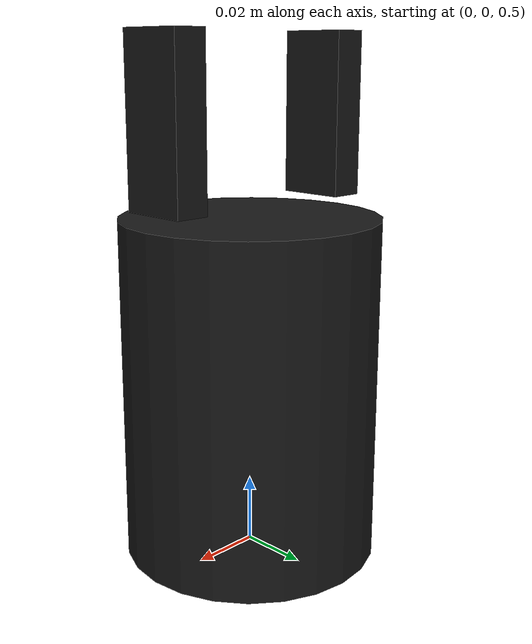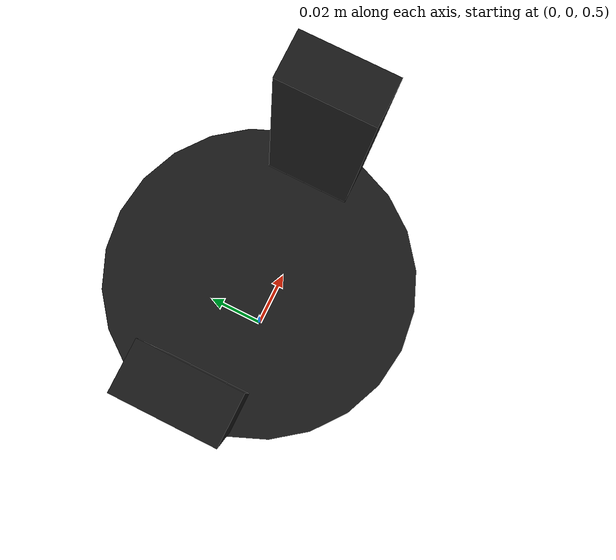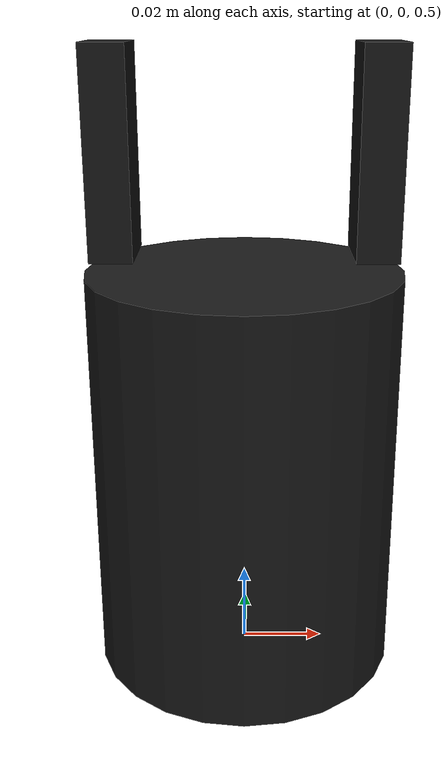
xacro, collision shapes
<?xml version="1.0"?>
<robot xmlns:xacro="http://ros.org/wiki/xacro" name="robotiq_hande" >
  <!-- robotiq_hande_gripper -->
  <xacro:include filename="$(find acroba_description)/urdf/robotiq_hande/robotiq_hande.urdf.xacro" />
  <xacro:robotiq_hande prefix=""/>

  <link name="world" />

  <joint name="world_to_robotiq_adapter" type="fixed">
    <origin rpy="0 0 0" xyz="0 0 0.5"/>
    <parent link="world"/>
    <child link="base_tool"/>
  </joint>

</robot>

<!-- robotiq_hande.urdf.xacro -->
<robot xmlns:xacro="http://ros.org/wiki/xacro">
  <xacro:macro name="robotiq_hande"  params="prefix">
    <link name="${prefix}base_tool">
      <inertial>
        <origin xyz="0 0 0.04607" rpy="0 0 0" />
        <mass value="0.86387" />
        <inertia ixx="1017560E-9" ixy="0" ixz="2235E-9" iyy="1028041E-9" iyz="0" izz="489810E-9" />
      </inertial>
      <visual>
        <origin xyz="0 0 0" rpy="0 0 0" />
        <geometry>
          <mesh filename="package://acroba_description/meshes/robotiq_hande/hand-e.dae" scale="0.001 0.001 0.001"/>
        </geometry>
        <material name="Gazebo/Black">
          <color rgba="0.1 0.1 0.1 1" />
        </material>
      </visual>
      <collision>
        <origin xyz="0 0 0.05" rpy="0 0 0" />
        <geometry>
          <cylinder radius="0.0375" length="0.1"/>
        </geometry>
      </collision>
    </link>
    <gazebo reference="${prefix}base_tool">
      <material>Gazebo/Black</material>
      <selfCollide>True</selfCollide>
    </gazebo>

    <link name="${prefix}left_finger">
      <inertial>
        <origin rpy="0 0 0" xyz="0.02262 -0.00759 0.00738"/>
        <mass value="0.03804"/>
        <inertia ixx="13567E-9" ixy="1849E-9" ixz="3622E-9" iyy="15784E-9" iyz="3616E-9" izz="7478E-9"/>
      </inertial>
      <visual>
        <origin rpy="0 0 0" xyz="0 0 0"/>
        <geometry>
          <mesh filename="package://acroba_description/meshes/robotiq_hande/finger_1.dae" scale="0.001 0.001 0.001"/>
        </geometry>
        <material name="Gazebo/Grey">
          <color rgba="0.1 0.1 0.1 1"/>
        </material>
      </visual>
      <collision>
        <origin xyz="0.03 0 0.0285" rpy="0 0 0"/>
        <geometry>
          <box size="0.01 0.02 0.047"/>
        </geometry>
      </collision>
    </link>
    <gazebo reference="${prefix}left_finger">
      <material>Gazebo/Grey</material>
      <selfCollide>True</selfCollide>
    </gazebo>

    <link name="${prefix}right_finger">
      <inertial>
        <origin rpy="0 0 0" xyz="-0.02262 0.00759 0.00738"/>
        <mass value="0.03804"/>
        <inertia ixx="13567E-9" ixy="1849E-9" ixz="-3622E-9" iyy="15784E-9" iyz="-3616E-9" izz="7478E-9"/>
      </inertial>
      <visual>
        <origin rpy="0 0 0" xyz="0 0 0"/>
        <geometry>
          <mesh filename="package://acroba_description/meshes/robotiq_hande/finger_2.dae" scale="0.001 0.001 0.001"/>
        </geometry>
        <material name="Gazebo/Grey">
          <color rgba="0.1 0.1 0.1 1"/>
        </material>
      </visual>
      <collision>
        <origin xyz="-0.03 0 0.0285" rpy="0 0 0"/>
        <geometry>
          <box size="0.01 0.02 0.047"/>
        </geometry>
      </collision>
    </link>
    <gazebo reference="${prefix}right_finger">
      <material>Gazebo/Grey</material>
      <selfCollide>True</selfCollide>
    </gazebo>

    <joint name="${prefix}joint_finger_left" type="prismatic">
      <origin rpy="0 0 0" xyz="0 0 0.099"/>
      <parent link="${prefix}base_tool"/>
      <child link="${prefix}left_finger"/>
      <axis xyz="-1 0 0"/>
      <limit effort="130" lower="0" upper="0.025" velocity="0.15"/>
    </joint>

    <joint name="${prefix}joint_finger_right" type="prismatic">
      <origin rpy="0 0 0" xyz="0 0 0.099"/>
      <parent link="${prefix}base_tool"/>
      <child link="${prefix}right_finger"/>
      <axis xyz="1 0 0"/>
      <limit effort="130" lower="0" upper="0.025" velocity="0.15"/>
    </joint>

     <link name="end_tool"/>
  <joint name="joint_gripping" type="fixed">
    <origin rpy="0 0 0" xyz="0. 0 0.146"/>
    <parent link="${prefix}base_tool"/>
    <child link="${prefix}end_tool"/>
  </joint>

  </xacro:macro>
</robot>
